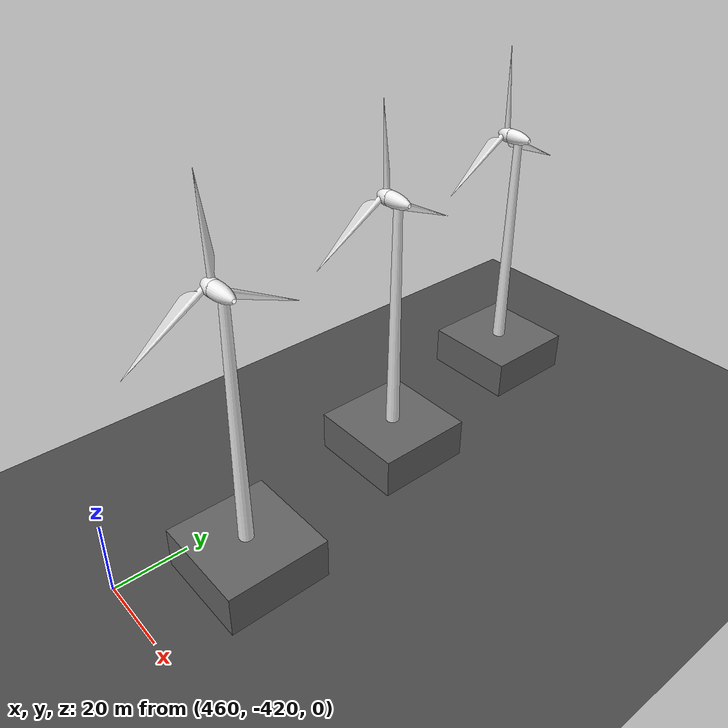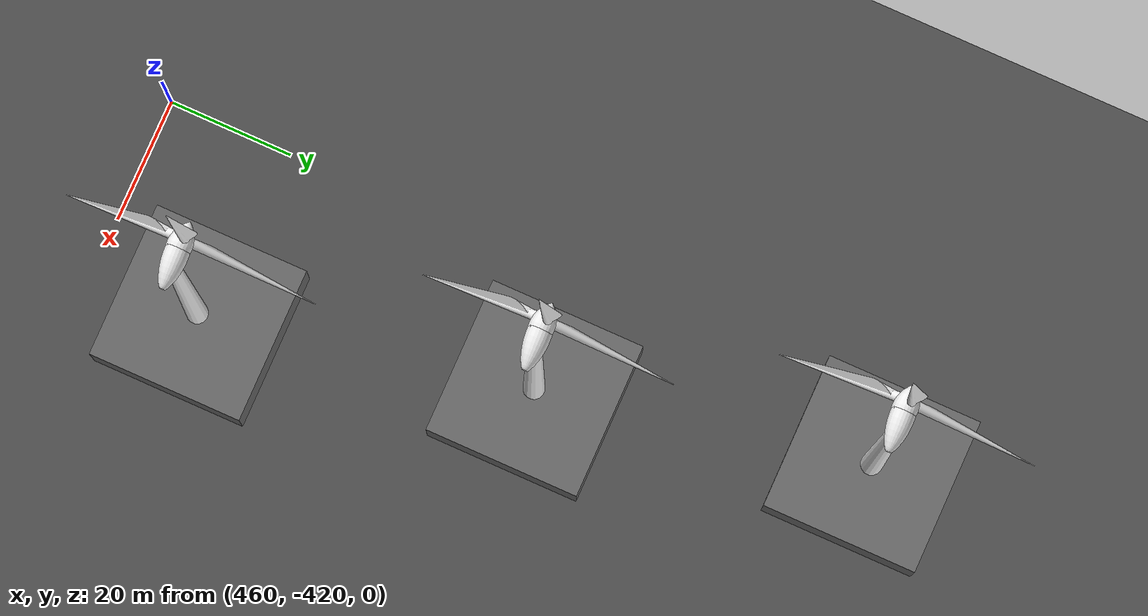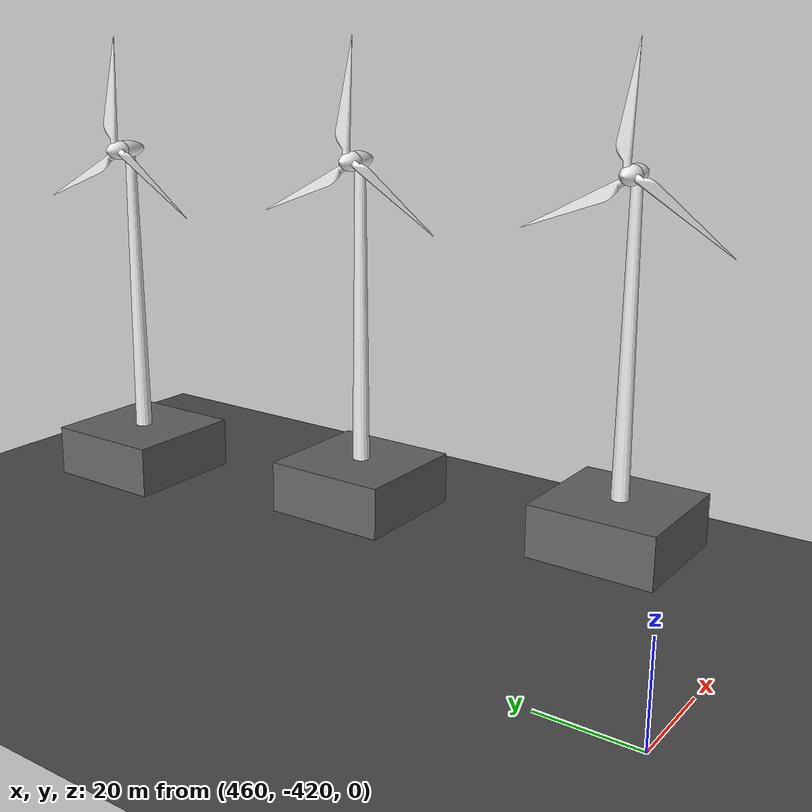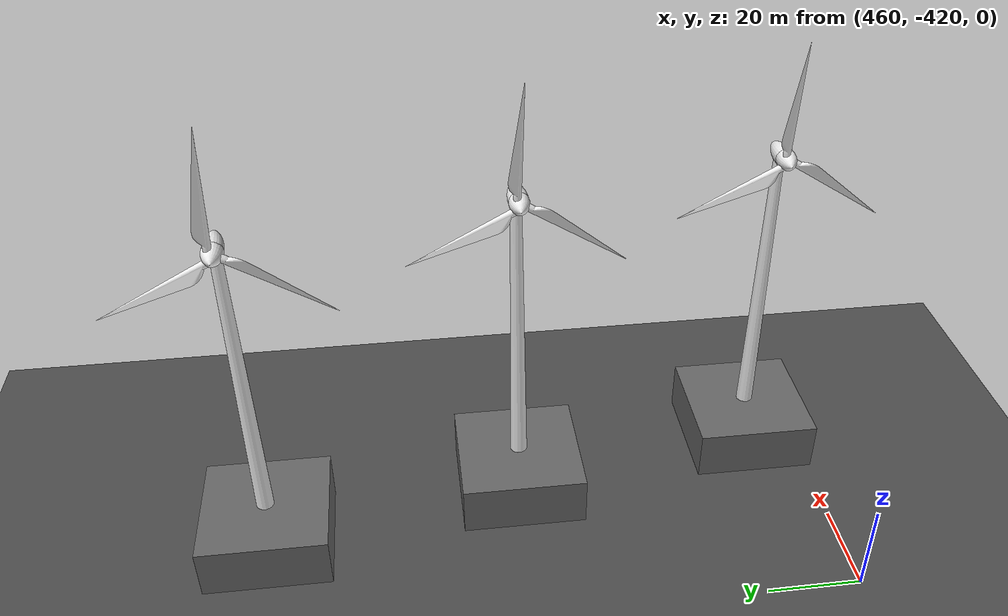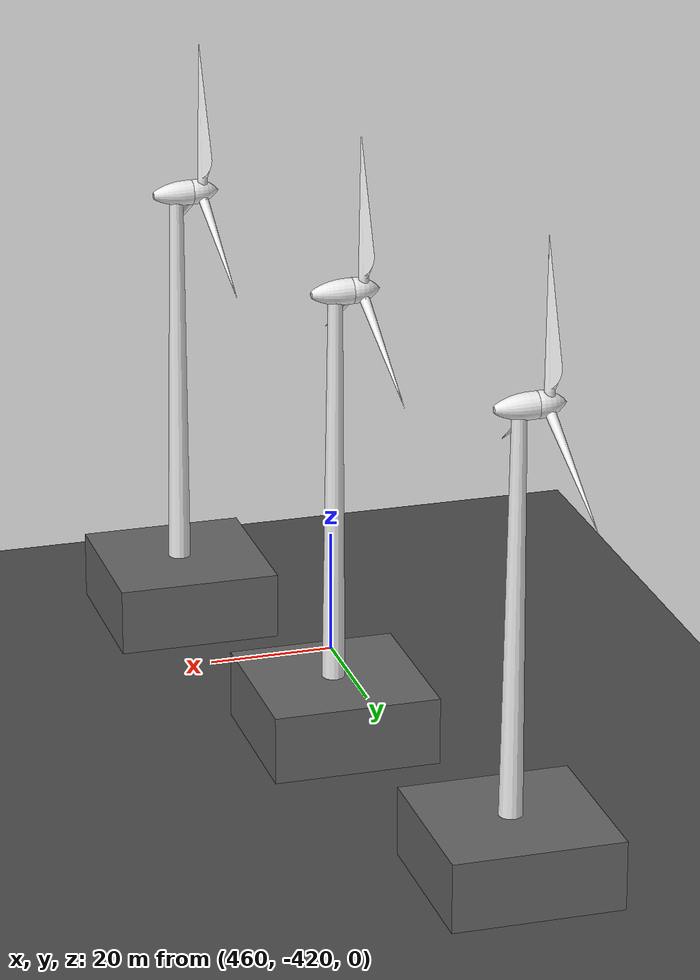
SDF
<sdf version="1.6">
 <world name="vessel_wave">
  <light type="directional" name="sun">
   <pose>0 0 10 0 0 0</pose>
   <diffuse>0.8 0.8 0.8 1</diffuse>
   <specular>0.2 0.2 0.2 1</specular>
   <attenuation>
    <range>1000</range>
    <constant>0.9</constant>
    <linear>0.01</linear>
    <quadratic>0.001</quadratic>
   </attenuation>
   <direction>-0.5 0.1 -0.9</direction>
  </light>
  <scene><ambient>1.0 1.0 1.0</ambient><background>0.8 0.8 0.8</background><grid>0</grid></scene>
  <spherical_coordinates>
   <surface_model>EARTH_WGS84</surface_model>
   <world_frame_orientation>ENU</world_frame_orientation>
   <latitude_deg>22.9</latitude_deg>
   <longitude_deg>43.2</longitude_deg>
   <elevation>0</elevation>
   <heading_deg>0</heading_deg>
  </spherical_coordinates>
  <plugin filename="gz-sim-physics-system" name="gz::sim::systems::Physics"/>
  <plugin filename="gz-sim-sensors-system" name="gz::sim::systems::Sensors">
   <render_engine>ogre2</render_engine>
  </plugin>
  <plugin filename="gz-sim-user-commands-system" name="gz::sim::systems::UserCommands"/>
  <plugin filename="gz-sim-scene-broadcaster-system" name="gz::sim::systems::SceneBroadcaster"/>
  <plugin filename="gz-sim-navsat-system" name="gz::sim::systems::NavSat"/>
  <plugin filename="gz-sim-imu-system" name="gz::sim::systems::Imu"/>
  <plugin filename="gz-sim-magnetometer-system" name="gz::sim::systems::Magnetometer"/>
  <plugin name="gz::sim::systems::Contact" filename="gz-sim-contact-system"/>
  <plugin name="gz::sim::systems::AirPressure" filename="gz-sim-air-pressure-system"/>
  <plugin name="gz::sim::systems::ApplyLinkWrench" filename="gz-sim-apply-link-wrench-system"/>
  <physics type="ode">
   <max_step_size>0.004</max_step_size>
   <real_time_factor>1.0</real_time_factor>
   <real_time_update_rate>250</real_time_update_rate>
  </physics>
  <include>
   <uri>model://wind_turbine</uri>
   <pose>470 -300 23 0 0 -1.5708</pose>
   <name>OnshoreWindTurbine</name>
  </include>
  <include>
   <uri>model://wind_turbine</uri>
   <pose>480 -350 23 0 0 -1.5708</pose>
   <name>OnshoreWindTurbine_2</name>
  </include>
  <include>
   <uri>model://wind_turbine</uri>
   <pose>490 -400 23 0 0 -1.5708</pose>
   <name>OnshoreWindTurbine_3</name>
  </include>
  <model name="ground_plane2">
   <static>true</static>
   <link name="link">
    <collision name="collision">
     <geometry><plane><normal>0 0 1</normal><size>80 80</size></plane></geometry>
    </collision>
    <visual name="visual">
     <geometry><plane><normal>0 0 1</normal><size>80 80</size></plane></geometry>
     <material><ambient>0.3 0.3 0.3 1</ambient><diffuse>0.3 0.3 0.3 1</diffuse></material>
    </visual>
   </link>
  </model>
  <wind><linear_velocity>1 1 1</linear_velocity></wind>
  <plugin filename="gz-sim-wind-effects-system" name="gz::sim::systems::WindEffects">
   <force_approximation_scaling_factor>1</force_approximation_scaling_factor>
   <horizontal>
    <magnitude>
     <time_for_rise>3</time_for_rise>
     <sin><amplitude_percent>10</amplitude_percent><period>1.5</period></sin>
     <noise><mean>0</mean><stddev>1.0</stddev></noise>
    </magnitude>
    <direction>
     <time_for_rise>5</time_for_rise>
     <sin><amplitude>15</amplitude><period>1.5</period></sin>
     <noise><mean>0</mean><stddev>5</stddev></noise>
    </direction>
   </horizontal>
   <vertical><time_for_rise>2</time_for_rise><noise><mean>0</mean><stddev>0.5</stddev></noise></vertical>
  </plugin>
 </world>
</sdf>

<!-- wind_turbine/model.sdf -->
<sdf version="1.8">
  <model name="wind_turbine">
    <link name="turbine_base">
      <pose>0 0 28 0 0 0</pose> <!-- Base positioned at ground level -->
      <visual name="base_visual">
        <geometry>
          <mesh>
            <uri>./meshes/turbine_base.stl</uri>
            <scale>7 7 7</scale> <!-- Scaling to 35% -->
          </mesh>
        </geometry>
        <material>
          <script>
            <name>Gazebo/White</name>
            <uri>file://media/materials/scripts/gazebo.material</uri>
          </script>
        </material>
      </visual>
    </link>

    <!-- Support link (Box) to hold the turbine to the ground -->
    <link name="turbine_support">
      <pose>0 0 0 0 0 0</pose> <!-- Positioned slightly below the base -->
      <inertial>
        <inertia>
          <ixx>88.2</ixx>
          <ixy>0.0</ixy>
          <ixz>0.0</ixz>
          <iyy>88.2</iyy>
          <iyz>0.0</iyz>
          <izz>88.2</izz>
        </inertia>
        <mass>3430000</mass>
      </inertial>

      <collision name="support_collision">
        <geometry>
          <box>
            <size>24.3 24.3 10</size> <!-- Dimensions of the support box -->
          </box>
        </geometry>
        <surface>
          <friction>
            <ode>
              <mu>0.1</mu>
              <mu2>0.1</mu2>
            </ode>
          </friction>
        </surface>
      </collision>
      <visual name="support_visual">
        <geometry>
          <box>
            <size>24.3 24.3 10</size> <!-- Visual representation of the support box -->
          </box>
        </geometry>
        <material>
          <ambient>0.4 0.4 0.4 1</ambient>   <!-- Darkened ambient -->
          <diffuse>0.4 0.4 0.4 1</diffuse>   <!-- Darkened diffuse -->
          <specular>0.3 0.3 0.3 1</specular> <!-- Darkened specular -->
        </material>
      </visual>
    </link>

      <!-- Joint to connect testlink to the base -->
    <joint name="supp_joint" type="fixed">
      <parent>turbine_support</parent>
      <child>turbine_base</child>
    </joint>

    <!-- Dynamic link for the turbine tower and nacelle -->
    <link name="turbine_nacell">
      <pose>0 0 63 0 0 0</pose>

      <visual name="visual">
        <geometry>
          <mesh>
            <uri>./meshes/turbine_nacell.stl</uri>
            <scale>7 7 7</scale> <!-- Scaling to 35% -->
          </mesh>
        </geometry>
        <material>
          <script>
            <name>Gazebo/White</name>
            <uri>file://media/materials/scripts/gazebo.material</uri>
          </script>
        </material>
      </visual>
    </link>

    <!-- Joint to connect testlink to the base -->
    <joint name="base_joint" type="fixed">
      <parent>turbine_base</parent>
      <child>turbine_nacell</child>
    </joint>

     <!-- Support link (Box) to hold the turbine to the ground -->
    <link name="turbine_hub">

      <pose>0.14 -2.38 63.00 1.5708 0 0</pose> <!-- Base positioned at ground level -->
      <inertial>
        <pose>0 0 0.0 0 0 0</pose>
        <mass>9800</mass>
        <density>7800</density>
        <inertia>
          <ixx>408.77</ixx>
          <ixy>0</ixy>
          <ixz>0</ixz>
          <iyy>408.77</iyy>
          <iyz>0</iyz>
          <izz>408.77</izz>
        </inertia>
      </inertial>

      <collision name="hub_collision">
        <density>7850</density>
        <geometry>
          <mesh>
            <uri>./meshes/turbine_hub.stl</uri>
            <scale>0.0182 0.0182 0.0182</scale>
          </mesh>
        </geometry>
      </collision>

      <visual name="hub_visual">
        <geometry>
          <mesh>
            <uri>./meshes/turbine_hub.stl</uri>
            <scale>0.0182 0.0182 0.0182</scale>
          </mesh>
        </geometry>
        <material>
          <script>
            <name>Gazebo/White</name>
            <uri>file://media/materials/scripts/gazebo.material</uri>
          </script>
        </material>
      </visual>
    </link>

    <!-- Support link (Box) to hold the turbine to the ground -->
    <link name="turbine_blade">

      <pose>0.14 -4.13 63 1.5708 0 0</pose>
      <inertial>
        <pose>0 11.9 0 0 0 0</pose>
        <mass>200</mass>
        <inertia>
          <ixx>8515.71</ixx>
          <ixy>0</ixy>
          <ixz>0</ixz>
          <iyy>204.82</iyy>
          <iyz>0</iyz>
          <izz>8614.20</izz>
        </inertia>
      </inertial>

      <collision name="collision">
        <density>7850</density>
        <pose>0.0 0.0 0 0.0 0.0 0.0</pose>
        <geometry>
          <mesh>
            <uri>./meshes/turbine_blade.stl</uri>
            <scale>0.35 0.35 0.35</scale> <!-- Scaling to 35% -->
          </mesh>
        </geometry>
      </collision>

      <visual name="visual">
        <pose>0.0 0.0 0 0.0 0.0 0.0</pose>
        <geometry>
          <mesh>
            <uri>./meshes/turbine_blade.stl</uri>
            <scale>0.35 0.35 0.35</scale> <!-- Scaling to 35% -->
          </mesh>
        </geometry>
        <material>
          <script>
            <name>Gazebo/White</name>
            <uri>file://media/materials/scripts/gazebo.material</uri>
          </script>
        </material>
      </visual>
    </link>

    <joint name="blade_joint" type="fixed">
      <parent>turbine_hub</parent>
      <child>turbine_blade</child>
      <pose>0.0 0.0 0.0 0.0 0.0 0.0</pose>
    </joint>

    <link name="turbine_blade_2">

      <pose>0.14 -4.13 63 1.5708 2.0944 0</pose>
      <inertial>
        <pose>0 11.9 0 0 0 0</pose>
        <mass>200</mass>
        <inertia>
          <ixx>8515.71</ixx>
          <ixy>0</ixy>
          <ixz>0</ixz>
          <iyy>204.82</iyy>
          <iyz>0</iyz>
          <izz>8614.20</izz>
        </inertia>
      </inertial>

      <collision name="collision">
        <density>7850</density>
        <pose>0.0 0.0 0 0.0 0.0 0.0</pose>
        <geometry>
          <mesh>
            <uri>./meshes/turbine_blade.stl</uri>
            <scale>0.35 0.35 0.35</scale> <!-- Scaling to 35% -->
          </mesh>
        </geometry>
      </collision>

      <visual name="visual">
        <pose>0.0 0.0 0 0.0 0.0 0.0</pose>
        <geometry>
          <mesh>
            <uri>./meshes/turbine_blade.stl</uri>
            <scale>0.35 0.35 0.35</scale> <!-- Scaling to 35% -->
          </mesh>
        </geometry>
        <material>
          <script>
            <name>Gazebo/White</name>
            <uri>file://media/materials/scripts/gazebo.material</uri>
          </script>
        </material>
      </visual>

    </link>

  <joint name="blade_joint_2" type="fixed">
    <parent>turbine_hub</parent>
    <child>turbine_blade_2</child>
    <pose>0.0 0.0 0.0 0.0 0.0 0.0</pose>
  </joint>

  <link name="turbine_blade_3">

    <pose>0.14 -4.13 63 1.5708 4.18879 0</pose>
    <inertial>
      <pose>0 11.9 0 0 0 0</pose>
      <mass>200</mass>
      <inertia>
        <ixx>8515.71</ixx>
        <ixy>0</ixy>
        <ixz>0</ixz>
        <iyy>204.82</iyy>
        <iyz>0</iyz>
        <izz>8614.20</izz>
      </inertia>
    </inertial>

    <collision name="collision">
      <density>7850</density>
      <pose>0.0 0.0 0 0.0 0.0 0.0</pose>
      <geometry>
        <mesh>
          <uri>./meshes/turbine_blade.stl</uri>
          <scale>0.35 0.35 0.35</scale>
          </mesh>
        </geometry>
      </collision>

      <visual name="visual">
        <pose>0.0 0.0 0 0.0 0.0 0.0</pose>
        <geometry>
          <mesh>
            <uri>./meshes/turbine_blade.stl</uri>
            <scale>0.35 0.35 0.35</scale> <!-- Scaling to 35% -->
          </mesh>
        </geometry>
        <material>
          <script>
            <name>Gazebo/White</name>
            <uri>file://media/materials/scripts/gazebo.material</uri>
          </script>
        </material>
      </visual>
  </link>

  <plugin
    filename="gz-sim-lift-drag-system"
    name="gz::sim::systems::LiftDrag">
    <a0>0.1</a0> <!-- The initial "alpha" or initial angle of attack. a0 is also the y-intercept of the alpha-lift coefficient curve.-->
    <cla>0.1</cla>
    <cda>0.001</cda>
    <cma>0.0</cma>
    <cp>0.0 0.5 0</cp>
    <area>32.452</area> <!-- Updated with the calculated surface area -->
    <air_density>1.2041</air_density>
    <forward>1 0 0</forward>
    <upward>0 0 1</upward>
    <link_name>turbine_blade</link_name>
  </plugin>

  <plugin
    filename="gz-sim-lift-drag-system"
    name="gz::sim::systems::LiftDrag">
    <a0>0.1</a0>
    <cla>0.1</cla>
    <cda>0.001</cda>
    <cma>0.0</cma>
    <cp>0.0 0.5 0</cp>
    <area>32.452</area> <!-- Updated with the calculated surface area -->
    <air_density>1.2041</air_density>
    <forward>1 0 0</forward>
    <upward>0 0 1</upward>
    <link_name>turbine_blade_2</link_name>
  </plugin>

  <plugin
    filename="gz-sim-lift-drag-system"
    name="gz::sim::systems::LiftDrag">
    <a0>0.1</a0>
    <cla>0.1</cla>
    <cda>0.001</cda>
    <cma>0.0</cma>
    <cp>0.0 0.5 0</cp>
    <area>32.452</area> <!-- Updated with the calculated surface area -->
    <air_density>1.2041</air_density>
    <forward>1 0 0</forward>
    <upward>0 0 1</upward>
    <link_name>turbine_blade_3</link_name>
  </plugin>

  <joint name="blade_joint_3" type="fixed">
    <parent>turbine_hub</parent>
    <child>turbine_blade_3</child>
    <pose>0.0 0.0 0.0 0.0 0.0 0.0</pose>
  </joint>

    <!-- Revolute joint for propeller rotation -->
  <joint name="propeller_joint" type="revolute">
      <parent>turbine_nacell</parent>
      <child>turbine_hub</child>
      <pose>0.0 0.0 0.0 0.0 0.0 0.0</pose>
      <axis>
        <xyz>0.0 0.0 1.0</xyz>
        <limit>
          <lower>-1e16</lower>
          <upper>1e16</upper>
          <velocity>10.0</velocity> <!-- Set a maximum rotational velocity -->
        </limit>
        <dynamics>
          <damping>0.05</damping> <!-- Increased damping to slow down the spin -->
          <friction>0.05</friction> <!-- Add friction to further resist motion -->
        </dynamics>
      </axis>
      <physics>
        <ode>
          <cfm_damping>1</cfm_damping>
        </ode>
      </physics>
    </joint>

  </model>
</sdf>
